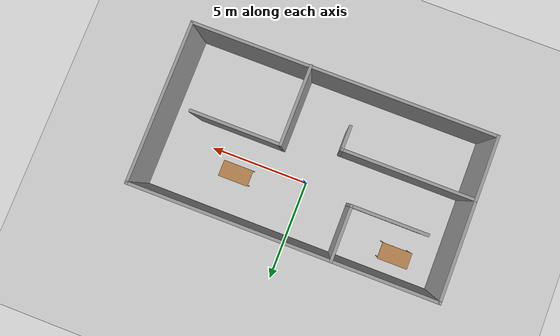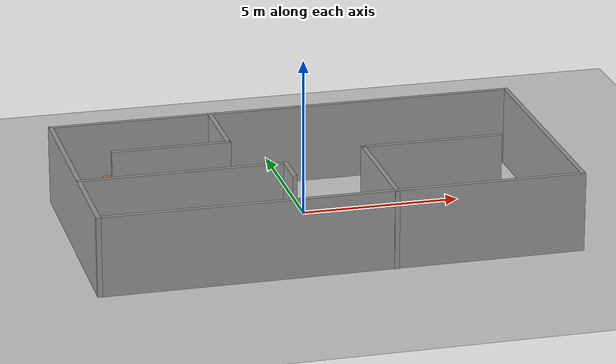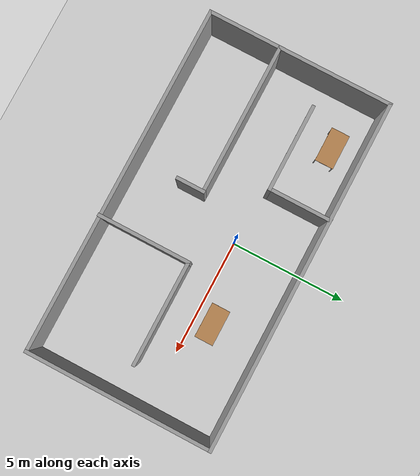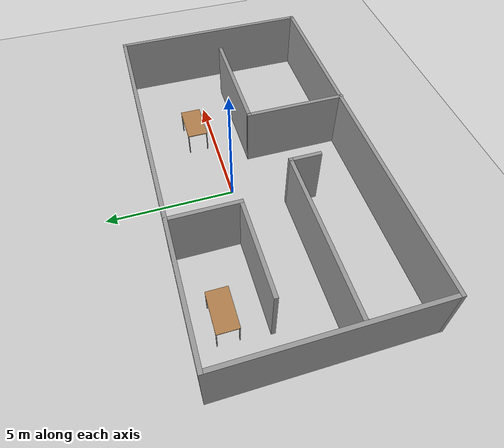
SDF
<sdf version="1.7">
 <world name="default">
  <light name="sun" type="directional">
   <pose>0 0 10 0 -0 0</pose>
   <diffuse>0.8 0.8 0.8 1</diffuse>
   <specular>0.2 0.2 0.2 1</specular>
   <attenuation>
    <range>1000</range>
    <constant>0.9</constant>
    <linear>0.01</linear>
    <quadratic>0.001</quadratic>
   </attenuation>
   <direction>-0.5 0.1 -0.9</direction>
   <spot><inner_angle>0</inner_angle><outer_angle>0</outer_angle><falloff>0</falloff></spot>
  </light>
  <model name="ground_plane">
   <static>1</static>
   <link name="link">
    <collision name="collision">
     <geometry><plane><normal>0 0 1</normal><size>100 100</size></plane></geometry>
     <surface><friction><ode><mu>100</mu><mu2>50</mu2></ode></friction></surface>
    </collision>
    <visual name="visual">
     <cast_shadows>0</cast_shadows>
     <geometry><plane><normal>0 0 1</normal><size>100 100</size></plane></geometry>
     <material>
      <script><uri>file://media/materials/scripts/gazebo.material</uri><name>Gazebo/Grey</name></script>
     </material>
    </visual>
   </link>
  </model>
  <gravity>0 0 -9.8</gravity>
  <magnetic_field>6e-06 2.3e-05 -4.2e-05</magnetic_field>
  <atmosphere type="adiabatic"/>
  <physics type="ode">
   <max_step_size>0.001</max_step_size>
   <real_time_factor>1</real_time_factor>
   <real_time_update_rate>1000</real_time_update_rate>
  </physics>
  <scene><ambient>0.4 0.4 0.4 1</ambient><background>0.7 0.7 0.7 1</background><shadows>1</shadows></scene>
  <audio><device>default</device></audio>
  <spherical_coordinates>
   <surface_model>EARTH_WGS84</surface_model>
   <latitude_deg>0</latitude_deg>
   <longitude_deg>0</longitude_deg>
   <elevation>0</elevation>
   <heading_deg>0</heading_deg>
  </spherical_coordinates>
  <model name="room">
   <pose>0.01079 -1.08642 0 0 -0 0</pose>
   <link name="Wall_11">
    <collision name="Wall_11_Collision">
     <geometry><box><size>6.5 0.15 2.5</size></box></geometry>
     <pose>0 0 1.25 0 -0 0</pose>
    </collision>
    <visual name="Wall_11_Visual">
     <pose>0 0 1.25 0 -0 0</pose>
     <geometry><box><size>6.5 0.15 2.5</size></box></geometry>
     <material>
      <script><uri>file://media/materials/scripts/gazebo.material</uri><name>Gazebo/Grey</name></script>
      <ambient>1 1 1 1</ambient>
     </material>
     <meta><layer>0</layer></meta>
    </visual>
    <pose>-4.22983 -0.864883 0 0 -0 0</pose>
   </link>
   <link name="Wall_12">
    <collision name="Wall_12_Collision">
     <geometry><box><size>1.25 0.15 2.5</size></box></geometry>
     <pose>0 0 1.25 0 -0 0</pose>
    </collision>
    <visual name="Wall_12_Visual">
     <pose>0 0 1.25 0 -0 0</pose>
     <geometry><box><size>1.25 0.15 2.5</size></box></geometry>
     <material>
      <script><uri>file://media/materials/scripts/gazebo.material</uri><name>Gazebo/Grey</name></script>
      <ambient>1 1 1 1</ambient>
     </material>
     <meta><layer>0</layer></meta>
    </visual>
    <pose>-1.05483 -1.41488 0 0 -0 -1.5708</pose>
   </link>
   <link name="Wall_14">
    <collision name="Wall_14_Collision">
     <geometry><box><size>4 0.15 2.5</size></box></geometry>
     <pose>0 0 1.25 0 -0 0</pose>
    </collision>
    <visual name="Wall_14_Visual">
     <pose>0 0 1.25 0 -0 0</pose>
     <geometry><box><size>4 0.15 2.5</size></box></geometry>
     <material>
      <script><uri>file://media/materials/scripts/gazebo.material</uri><name>Gazebo/Grey</name></script>
      <ambient>1 1 1 1</ambient>
     </material>
     <meta><layer>0</layer></meta>
    </visual>
    <pose>1.60605 -2.01726 0 0 -0 1.5708</pose>
   </link>
   <link name="Wall_15">
    <collision name="Wall_15_Collision">
     <geometry><box><size>4.5 0.15 2.5</size></box></geometry>
     <pose>0 0 1.25 0 -0 0</pose>
    </collision>
    <visual name="Wall_15_Visual">
     <pose>0 0 1.25 0 -0 0</pose>
     <geometry><box><size>4.5 0.15 2.5</size></box></geometry>
     <material>
      <script><uri>file://media/materials/scripts/gazebo.material</uri><name>Gazebo/Grey</name></script>
      <ambient>1 1 1 1</ambient>
     </material>
     <meta><layer>0</layer></meta>
    </visual>
    <pose>3.78105 -0.09226 0 0 -0 0</pose>
   </link>
   <link name="Wall_3">
    <collision name="Wall_3_Collision">
     <geometry><box><size>15 0.15 2.5</size></box></geometry>
     <pose>0 0 1.25 0 -0 0</pose>
    </collision>
    <visual name="Wall_3_Visual">
     <pose>0 0 1.25 0 -0 0</pose>
     <geometry><box><size>15 0.15 2.5</size></box></geometry>
     <material>
      <script><uri>file://media/materials/scripts/gazebo.material</uri><name>Gazebo/Grey</name></script>
      <ambient>1 1 1 1</ambient>
     </material>
     <meta><layer>0</layer></meta>
    </visual>
    <pose>0 3.93609 0 0 -0 0</pose>
   </link>
   <link name="Wall_4">
    <collision name="Wall_4_Collision">
     <geometry><box><size>8 0.15 2.5</size></box></geometry>
     <pose>0 0 1.25 0 -0 0</pose>
    </collision>
    <visual name="Wall_4_Visual">
     <pose>0 0 1.25 0 -0 0</pose>
     <geometry><box><size>8 0.15 2.5</size></box></geometry>
     <material>
      <script><uri>file://media/materials/scripts/gazebo.material</uri><name>Gazebo/Grey</name></script>
      <ambient>1 1 1 1</ambient>
     </material>
     <meta><layer>0</layer></meta>
    </visual>
    <pose>7.425 0.011093 0 0 -0 -1.5708</pose>
   </link>
   <link name="Wall_5">
    <collision name="Wall_5_Collision">
     <geometry><box><size>15 0.15 2.5</size></box></geometry>
     <pose>0 0 1.25 0 -0 0</pose>
    </collision>
    <visual name="Wall_5_Visual">
     <pose>0 0 1.25 0 -0 0</pose>
     <geometry><box><size>15 0.15 2.5</size></box></geometry>
     <material>
      <script><uri>file://media/materials/scripts/gazebo.material</uri><name>Gazebo/Grey</name></script>
      <ambient>1 1 1 1</ambient>
     </material>
     <meta><layer>0</layer></meta>
    </visual>
    <pose>0 -3.91391 0 0 -0 3.14159</pose>
   </link>
   <link name="Wall_6">
    <collision name="Wall_6_Collision">
     <geometry><box><size>8 0.15 2.5</size></box></geometry>
     <pose>0 0 1.25 0 -0 0</pose>
    </collision>
    <visual name="Wall_6_Visual">
     <pose>0 0 1.25 0 -0 0</pose>
     <geometry><box><size>8 0.15 2.5</size></box></geometry>
     <material>
      <script><uri>file://media/materials/scripts/gazebo.material</uri><name>Gazebo/Grey</name></script>
      <ambient>1 1 1 1</ambient>
     </material>
     <meta><layer>0</layer></meta>
    </visual>
    <pose>-7.425 0.011093 0 0 -0 1.5708</pose>
   </link>
   <link name="Wall_8">
    <collision name="Wall_8_Collision">
     <geometry><box><size>2.75 0.15 2.5</size></box></geometry>
     <pose>0 0 1.25 0 -0 0</pose>
    </collision>
    <visual name="Wall_8_Visual">
     <pose>0 0 1.25 0 -0 0</pose>
     <geometry><box><size>2.75 0.15 2.5</size></box></geometry>
     <material>
      <script><uri>file://media/materials/scripts/gazebo.material</uri><name>Gazebo/Grey</name></script>
      <ambient>1 1 1 1</ambient>
     </material>
     <meta><layer>0</layer></meta>
    </visual>
    <pose>-2.33621 2.64226 0 0 -0 -1.5708</pose>
   </link>
   <link name="Wall_9">
    <collision name="Wall_9_Collision">
     <geometry><box><size>3.75 0.15 2.5</size></box></geometry>
     <pose>0 0 1.25 0 -0 0</pose>
    </collision>
    <visual name="Wall_9_Visual">
     <pose>0 0 1.25 0 -0 0</pose>
     <geometry><box><size>3.75 0.15 2.5</size></box></geometry>
     <material>
      <script><uri>file://media/materials/scripts/gazebo.material</uri><name>Gazebo/Grey</name></script>
      <ambient>1 1 1 1</ambient>
     </material>
     <meta><layer>0</layer></meta>
    </visual>
    <pose>-4.13621 1.34226 0 0 -0 3.14159</pose>
   </link>
   <static>1</static>
  </model>
  <model name="table">
   <static>1</static>
   <link name="link">
    <collision name="surface">
     <pose>0 0 1 0 -0 0</pose>
     <geometry><box><size>1.5 0.8 0.03</size></box></geometry>
     <surface><friction><ode><mu>0.6</mu><mu2>0.6</mu2></ode></friction></surface>
    </collision>
    <visual name="visual1">
     <pose>0 0 1 0 -0 0</pose>
     <geometry><box><size>1.5 0.8 0.03</size></box></geometry>
     <material>
      <script><uri>file://media/materials/scripts/gazebo.material</uri><name>Gazebo/Wood</name></script>
     </material>
    </visual>
    <collision name="front_left_leg">
     <pose>0.68 0.38 0.5 0 -0 0</pose>
     <geometry><cylinder><radius>0.02</radius><length>1</length></cylinder></geometry>
    </collision>
    <visual name="front_left_leg">
     <pose>0.68 0.38 0.5 0 -0 0</pose>
     <geometry><cylinder><radius>0.02</radius><length>1</length></cylinder></geometry>
     <material>
      <script><uri>file://media/materials/scripts/gazebo.material</uri><name>Gazebo/Grey</name></script>
     </material>
    </visual>
    <collision name="front_right_leg">
     <pose>0.68 -0.38 0.5 0 -0 0</pose>
     <geometry><cylinder><radius>0.02</radius><length>1</length></cylinder></geometry>
    </collision>
    <visual name="front_right_leg">
     <pose>0.68 -0.38 0.5 0 -0 0</pose>
     <geometry><cylinder><radius>0.02</radius><length>1</length></cylinder></geometry>
     <material>
      <script><uri>file://media/materials/scripts/gazebo.material</uri><name>Gazebo/Grey</name></script>
     </material>
    </visual>
    <collision name="back_right_leg">
     <pose>-0.68 -0.38 0.5 0 -0 0</pose>
     <geometry><cylinder><radius>0.02</radius><length>1</length></cylinder></geometry>
    </collision>
    <visual name="back_right_leg">
     <pose>-0.68 -0.38 0.5 0 -0 0</pose>
     <geometry><cylinder><radius>0.02</radius><length>1</length></cylinder></geometry>
     <material>
      <script><uri>file://media/materials/scripts/gazebo.material</uri><name>Gazebo/Grey</name></script>
     </material>
    </visual>
    <collision name="back_left_leg">
     <pose>-0.68 0.38 0.5 0 -0 0</pose>
     <geometry><cylinder><radius>0.02</radius><length>1</length></cylinder></geometry>
    </collision>
    <visual name="back_left_leg">
     <pose>-0.68 0.38 0.5 0 -0 0</pose>
     <geometry><cylinder><radius>0.02</radius><length>1</length></cylinder></geometry>
     <material>
      <script><uri>file://media/materials/scripts/gazebo.material</uri><name>Gazebo/Grey</name></script>
     </material>
    </visual>
   </link>
   <pose>-5.19409 1.72376 0 0 -0 0</pose>
  </model>
  <model name="table_0">
   <static>1</static>
   <link name="link">
    <collision name="surface">
     <pose>0 0 1 0 -0 0</pose>
     <geometry><box><size>1.5 0.8 0.03</size></box></geometry>
     <surface><friction><ode><mu>0.6</mu><mu2>0.6</mu2></ode></friction></surface>
    </collision>
    <visual name="visual1">
     <pose>0 0 1 0 -0 0</pose>
     <geometry><box><size>1.5 0.8 0.03</size></box></geometry>
     <material>
      <script><uri>file://media/materials/scripts/gazebo.material</uri><name>Gazebo/Wood</name></script>
     </material>
    </visual>
    <collision name="front_left_leg">
     <pose>0.68 0.38 0.5 0 -0 0</pose>
     <geometry><cylinder><radius>0.02</radius><length>1</length></cylinder></geometry>
    </collision>
    <visual name="front_left_leg">
     <pose>0.68 0.38 0.5 0 -0 0</pose>
     <geometry><cylinder><radius>0.02</radius><length>1</length></cylinder></geometry>
     <material>
      <script><uri>file://media/materials/scripts/gazebo.material</uri><name>Gazebo/Grey</name></script>
     </material>
    </visual>
    <collision name="front_right_leg">
     <pose>0.68 -0.38 0.5 0 -0 0</pose>
     <geometry><cylinder><radius>0.02</radius><length>1</length></cylinder></geometry>
    </collision>
    <visual name="front_right_leg">
     <pose>0.68 -0.38 0.5 0 -0 0</pose>
     <geometry><cylinder><radius>0.02</radius><length>1</length></cylinder></geometry>
     <material>
      <script><uri>file://media/materials/scripts/gazebo.material</uri><name>Gazebo/Grey</name></script>
     </material>
    </visual>
    <collision name="back_right_leg">
     <pose>-0.68 -0.38 0.5 0 -0 0</pose>
     <geometry><cylinder><radius>0.02</radius><length>1</length></cylinder></geometry>
    </collision>
    <visual name="back_right_leg">
     <pose>-0.68 -0.38 0.5 0 -0 0</pose>
     <geometry><cylinder><radius>0.02</radius><length>1</length></cylinder></geometry>
     <material>
      <script><uri>file://media/materials/scripts/gazebo.material</uri><name>Gazebo/Grey</name></script>
     </material>
    </visual>
    <collision name="back_left_leg">
     <pose>-0.68 0.38 0.5 0 -0 0</pose>
     <geometry><cylinder><radius>0.02</radius><length>1</length></cylinder></geometry>
    </collision>
    <visual name="back_left_leg">
     <pose>-0.68 0.38 0.5 0 -0 0</pose>
     <geometry><cylinder><radius>0.02</radius><length>1</length></cylinder></geometry>
     <material>
      <script><uri>file://media/materials/scripts/gazebo.material</uri><name>Gazebo/Grey</name></script>
     </material>
    </visual>
   </link>
   <pose>3.29455 0.748396 0 0 -0 0</pose>
  </model>
 </world>
</sdf>
